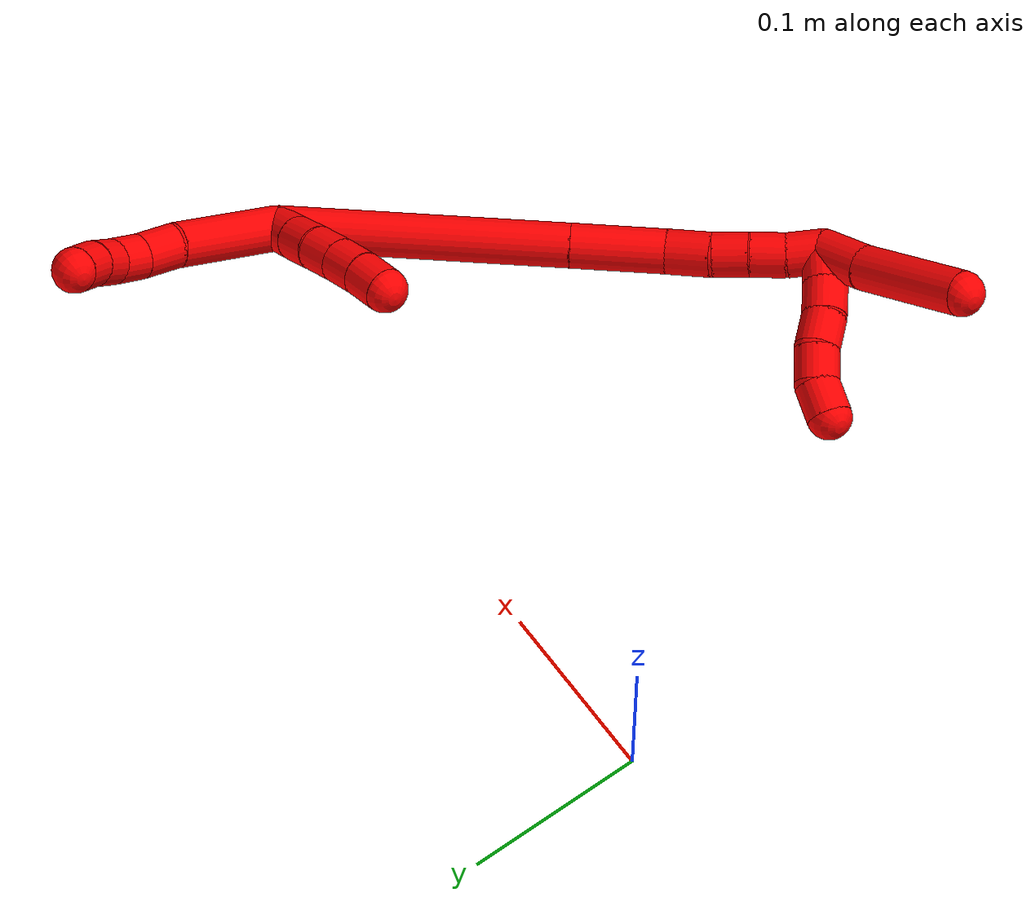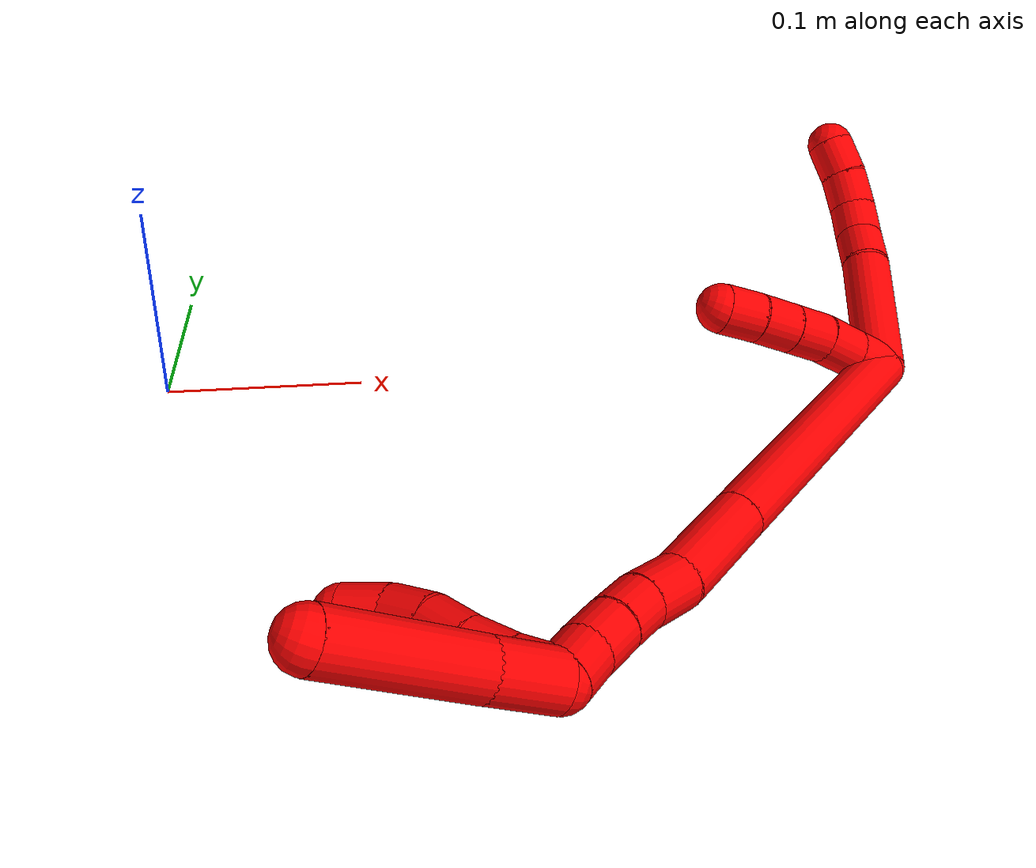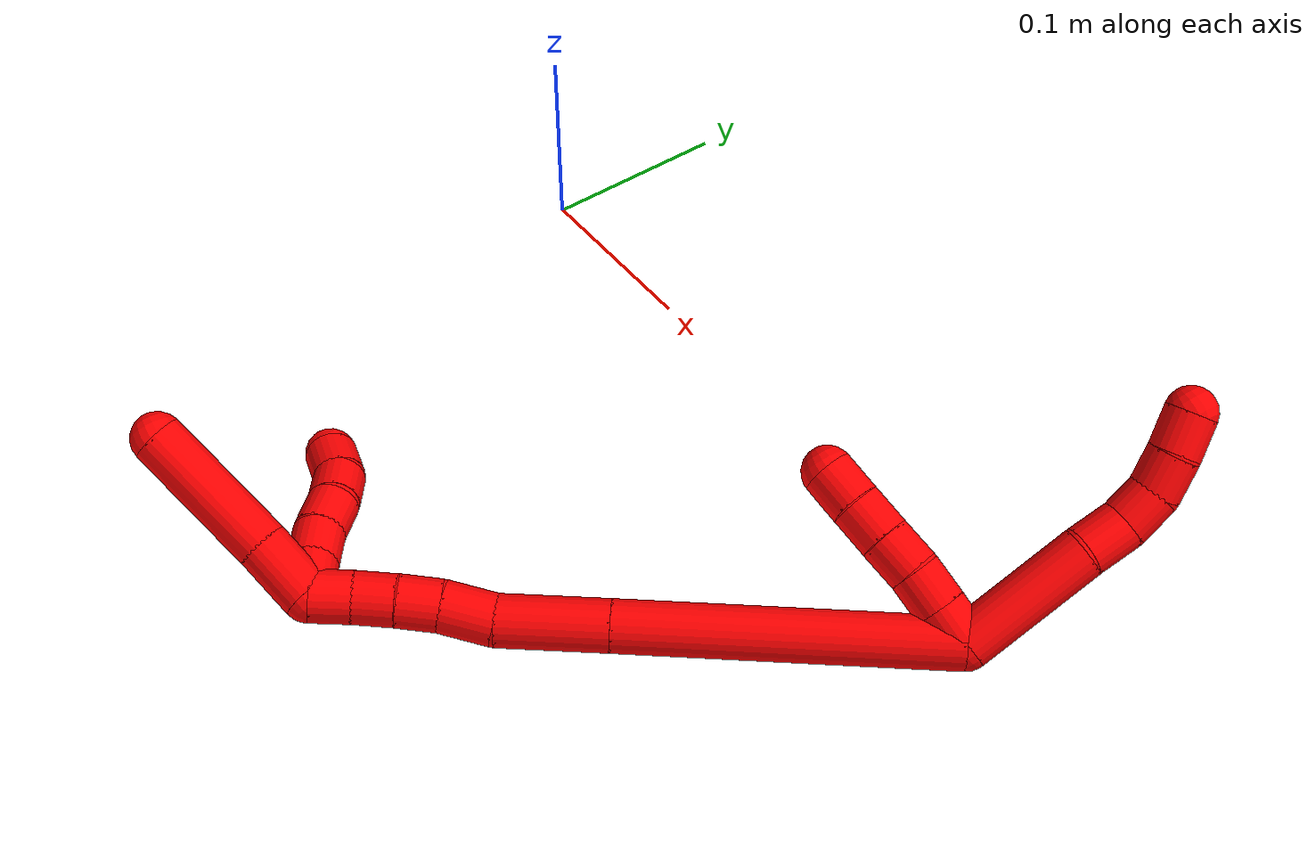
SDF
<sdf version="1.7">
 <world name="default">
  <model name="2">
   <static>0</static>
   <link name="2">
    <collision name="collision-cylinder-e_1_2_8">
     <pose>0.008759 0.032255 -0.004434 -1.70742 0.262809 -0.30087</pose>
     <geometry><cylinder><radius>0.0125</radius><length>0.067432</length></cylinder></geometry>
     <surface>
      <friction><ode><mu>1.16</mu><mu2>1.16</mu2><slip1>0</slip1><slip2>0</slip2></ode></friction>
      <contact><ode><kp>1e+06</kp><kd>1</kd><max_vel>0</max_vel><min_depth>0.001</min_depth></ode></contact>
     </surface>
    </collision>
    <visual name="visual-cylinder-e_1_2_8">
     <pose>0.008759 0.032255 -0.004434 -1.70742 0.262809 -0.30087</pose>
     <geometry><cylinder><radius>0.0125</radius><length>0.067432</length></cylinder></geometry>
     <material><ambient>1 0 0 1</ambient></material>
    </visual>
    <collision name="collision-cylinder-e_2_8_9">
     <pose>0.02217 0.074709 -0.00988 -1.66955 0.426056 -0.468822</pose>
     <geometry><cylinder><radius>0.0125</radius><length>0.022511</length></cylinder></geometry>
     <surface>
      <friction><ode><mu>1.16</mu><mu2>1.16</mu2><slip1>0</slip1><slip2>0</slip2></ode></friction>
      <contact><ode><kp>1e+06</kp><kd>1</kd><max_vel>0</max_vel><min_depth>0.001</min_depth></ode></contact>
     </surface>
    </collision>
    <visual name="visual-cylinder-e_2_8_9">
     <pose>0.02217 0.074709 -0.00988 -1.66955 0.426056 -0.468822</pose>
     <geometry><cylinder><radius>0.0125</radius><length>0.022511</length></cylinder></geometry>
     <material><ambient>1 0 0 1</ambient></material>
    </visual>
    <collision name="collision-cylinder-e_3_9_10">
     <pose>0.028751 0.094375 -0.013497 -1.83958 0.194036 -0.254136</pose>
     <geometry><cylinder><radius>0.0125</radius><length>0.020013</length></cylinder></geometry>
     <surface>
      <friction><ode><mu>1.16</mu><mu2>1.16</mu2><slip1>0</slip1><slip2>0</slip2></ode></friction>
      <contact><ode><kp>1e+06</kp><kd>1</kd><max_vel>0</max_vel><min_depth>0.001</min_depth></ode></contact>
     </surface>
    </collision>
    <visual name="visual-cylinder-e_3_9_10">
     <pose>0.028751 0.094375 -0.013497 -1.83958 0.194036 -0.254136</pose>
     <geometry><cylinder><radius>0.0125</radius><length>0.020013</length></cylinder></geometry>
     <material><ambient>1 0 0 1</ambient></material>
    </visual>
    <collision name="collision-cylinder-e_4_10_11">
     <pose>0.030256 0.112497 -0.021106 -2.09467 -0.042432 0.073496</pose>
     <geometry><cylinder><radius>0.0125</radius><length>0.020012</length></cylinder></geometry>
     <surface>
      <friction><ode><mu>1.16</mu><mu2>1.16</mu2><slip1>0</slip1><slip2>0</slip2></ode></friction>
      <contact><ode><kp>1e+06</kp><kd>1</kd><max_vel>0</max_vel><min_depth>0.001</min_depth></ode></contact>
     </surface>
    </collision>
    <visual name="visual-cylinder-e_4_10_11">
     <pose>0.030256 0.112497 -0.021106 -2.09467 -0.042432 0.073496</pose>
     <geometry><cylinder><radius>0.0125</radius><length>0.020012</length></cylinder></geometry>
     <material><ambient>1 0 0 1</ambient></material>
    </visual>
    <collision name="collision-cylinder-e_5_11_6">
     <pose>0.030221 0.129287 -0.031938 -2.19279 0.038818 -0.075566</pose>
     <geometry><cylinder><radius>0.0125</radius><length>0.020033</length></cylinder></geometry>
     <surface>
      <friction><ode><mu>1.16</mu><mu2>1.16</mu2><slip1>0</slip1><slip2>0</slip2></ode></friction>
      <contact><ode><kp>1e+06</kp><kd>1</kd><max_vel>0</max_vel><min_depth>0.001</min_depth></ode></contact>
     </surface>
    </collision>
    <visual name="visual-cylinder-e_5_11_6">
     <pose>0.030221 0.129287 -0.031938 -2.19279 0.038818 -0.075566</pose>
     <geometry><cylinder><radius>0.0125</radius><length>0.020033</length></cylinder></geometry>
     <material><ambient>1 0 0 1</ambient></material>
    </visual>
    <collision name="collision-cylinder-e_1_2_12">
     <pose>-0.001685 -0.000304 -0.009852 3.11076 -0.16927 -2.78203</pose>
     <geometry><cylinder><radius>0.0125</radius><length>0.02</length></cylinder></geometry>
     <surface>
      <friction><ode><mu>1.16</mu><mu2>1.16</mu2><slip1>0</slip1><slip2>0</slip2></ode></friction>
      <contact><ode><kp>1e+06</kp><kd>1</kd><max_vel>0</max_vel><min_depth>0.001</min_depth></ode></contact>
     </surface>
    </collision>
    <visual name="visual-cylinder-e_1_2_12">
     <pose>-0.001685 -0.000304 -0.009852 3.11076 -0.16927 -2.78203</pose>
     <geometry><cylinder><radius>0.0125</radius><length>0.02</length></cylinder></geometry>
     <material><ambient>1 0 0 1</ambient></material>
    </visual>
    <collision name="collision-cylinder-e_2_12_13">
     <pose>-0.005216 -0.001068 -0.029522 3.09475 -0.185728 -2.64876</pose>
     <geometry><cylinder><radius>0.0125</radius><length>0.02</length></cylinder></geometry>
     <surface>
      <friction><ode><mu>1.16</mu><mu2>1.16</mu2><slip1>0</slip1><slip2>0</slip2></ode></friction>
      <contact><ode><kp>1e+06</kp><kd>1</kd><max_vel>0</max_vel><min_depth>0.001</min_depth></ode></contact>
     </surface>
    </collision>
    <visual name="visual-cylinder-e_2_12_13">
     <pose>-0.005216 -0.001068 -0.029522 3.09475 -0.185728 -2.64876</pose>
     <geometry><cylinder><radius>0.0125</radius><length>0.02</length></cylinder></geometry>
     <material><ambient>1 0 0 1</ambient></material>
    </visual>
    <collision name="collision-cylinder-e_3_13_14">
     <pose>-0.008386 -0.003146 -0.049119 2.97768 -0.132692 -1.3603</pose>
     <geometry><cylinder><radius>0.0125</radius><length>0.02</length></cylinder></geometry>
     <surface>
      <friction><ode><mu>1.16</mu><mu2>1.16</mu2><slip1>0</slip1><slip2>0</slip2></ode></friction>
      <contact><ode><kp>1e+06</kp><kd>1</kd><max_vel>0</max_vel><min_depth>0.001</min_depth></ode></contact>
     </surface>
    </collision>
    <visual name="visual-cylinder-e_3_13_14">
     <pose>-0.008386 -0.003146 -0.049119 2.97768 -0.132692 -1.3603</pose>
     <geometry><cylinder><radius>0.0125</radius><length>0.02</length></cylinder></geometry>
     <material><ambient>1 0 0 1</ambient></material>
    </visual>
    <collision name="collision-cylinder-e_4_14_15">
     <pose>-0.010722 -0.006286 -0.068729 2.9879 -0.101533 -1.16658</pose>
     <geometry><cylinder><radius>0.0125</radius><length>0.02</length></cylinder></geometry>
     <surface>
      <friction><ode><mu>1.16</mu><mu2>1.16</mu2><slip1>0</slip1><slip2>0</slip2></ode></friction>
      <contact><ode><kp>1e+06</kp><kd>1</kd><max_vel>0</max_vel><min_depth>0.001</min_depth></ode></contact>
     </surface>
    </collision>
    <visual name="visual-cylinder-e_4_14_15">
     <pose>-0.010722 -0.006286 -0.068729 2.9879 -0.101533 -1.16658</pose>
     <geometry><cylinder><radius>0.0125</radius><length>0.02</length></cylinder></geometry>
     <material><ambient>1 0 0 1</ambient></material>
    </visual>
    <collision name="collision-cylinder-e_5_15_5">
     <pose>-0.012002 -0.009424 -0.088425 2.97934 -0.026672 -0.325164</pose>
     <geometry><cylinder><radius>0.0125</radius><length>0.02</length></cylinder></geometry>
     <surface>
      <friction><ode><mu>1.16</mu><mu2>1.16</mu2><slip1>0</slip1><slip2>0</slip2></ode></friction>
      <contact><ode><kp>1e+06</kp><kd>1</kd><max_vel>0</max_vel><min_depth>0.001</min_depth></ode></contact>
     </surface>
    </collision>
    <visual name="visual-cylinder-e_5_15_5">
     <pose>-0.012002 -0.009424 -0.088425 2.97934 -0.026672 -0.325164</pose>
     <geometry><cylinder><radius>0.0125</radius><length>0.02</length></cylinder></geometry>
     <material><ambient>1 0 0 1</ambient></material>
    </visual>
    <collision name="collision-cylinder-e_1_2_16">
     <pose>-0.026321 -0.062479 -0.043129 2.17498 -0.333723 -0.621081</pose>
     <geometry><cylinder><radius>0.0125</radius><length>0.160706</length></cylinder></geometry>
     <surface>
      <friction><ode><mu>1.16</mu><mu2>1.16</mu2><slip1>0</slip1><slip2>0</slip2></ode></friction>
      <contact><ode><kp>1e+06</kp><kd>1</kd><max_vel>0</max_vel><min_depth>0.001</min_depth></ode></contact>
     </surface>
    </collision>
    <visual name="visual-cylinder-e_1_2_16">
     <pose>-0.026321 -0.062479 -0.043129 2.17498 -0.333723 -0.621081</pose>
     <geometry><cylinder><radius>0.0125</radius><length>0.160706</length></cylinder></geometry>
     <material><ambient>1 0 0 1</ambient></material>
    </visual>
    <collision name="collision-cylinder-e_2_16_17">
     <pose>-0.06127 -0.14569 -0.100437 2.17063 -0.330919 -0.613056</pose>
     <geometry><cylinder><radius>0.0125</radius><length>0.053114</length></cylinder></geometry>
     <surface>
      <friction><ode><mu>1.16</mu><mu2>1.16</mu2><slip1>0</slip1><slip2>0</slip2></ode></friction>
      <contact><ode><kp>1e+06</kp><kd>1</kd><max_vel>0</max_vel><min_depth>0.001</min_depth></ode></contact>
     </surface>
    </collision>
    <visual name="visual-cylinder-e_2_16_17">
     <pose>-0.06127 -0.14569 -0.100437 2.17063 -0.330919 -0.613056</pose>
     <geometry><cylinder><radius>0.0125</radius><length>0.053114</length></cylinder></geometry>
     <material><ambient>1 0 0 1</ambient></material>
    </visual>
    <collision name="collision-cylinder-e_3_17_18">
     <pose>-0.074557 -0.174487 -0.123439 2.40111 -0.371617 -0.902016</pose>
     <geometry><cylinder><radius>0.0125</radius><length>0.025659</length></cylinder></geometry>
     <surface>
      <friction><ode><mu>1.16</mu><mu2>1.16</mu2><slip1>0</slip1><slip2>0</slip2></ode></friction>
      <contact><ode><kp>1e+06</kp><kd>1</kd><max_vel>0</max_vel><min_depth>0.001</min_depth></ode></contact>
     </surface>
    </collision>
    <visual name="visual-cylinder-e_3_17_18">
     <pose>-0.074557 -0.174487 -0.123439 2.40111 -0.371617 -0.902016</pose>
     <geometry><cylinder><radius>0.0125</radius><length>0.025659</length></cylinder></geometry>
     <material><ambient>1 0 0 1</ambient></material>
    </visual>
    <collision name="collision-cylinder-e_4_18_19">
     <pose>-0.083436 -0.189669 -0.138107 2.25829 -0.429642 -0.864722</pose>
     <geometry><cylinder><radius>0.0125</radius><length>0.020263</length></cylinder></geometry>
     <surface>
      <friction><ode><mu>1.16</mu><mu2>1.16</mu2><slip1>0</slip1><slip2>0</slip2></ode></friction>
      <contact><ode><kp>1e+06</kp><kd>1</kd><max_vel>0</max_vel><min_depth>0.001</min_depth></ode></contact>
     </surface>
    </collision>
    <visual name="visual-cylinder-e_4_18_19">
     <pose>-0.083436 -0.189669 -0.138107 2.25829 -0.429642 -0.864722</pose>
     <geometry><cylinder><radius>0.0125</radius><length>0.020263</length></cylinder></geometry>
     <material><ambient>1 0 0 1</ambient></material>
    </visual>
    <collision name="collision-cylinder-e_5_19_20">
     <pose>-0.091343 -0.204285 -0.149508 2.2085 -0.376219 -0.722759</pose>
     <geometry><cylinder><radius>0.0125</radius><length>0.020066</length></cylinder></geometry>
     <surface>
      <friction><ode><mu>1.16</mu><mu2>1.16</mu2><slip1>0</slip1><slip2>0</slip2></ode></friction>
      <contact><ode><kp>1e+06</kp><kd>1</kd><max_vel>0</max_vel><min_depth>0.001</min_depth></ode></contact>
     </surface>
    </collision>
    <visual name="visual-cylinder-e_5_19_20">
     <pose>-0.091343 -0.204285 -0.149508 2.2085 -0.376219 -0.722759</pose>
     <geometry><cylinder><radius>0.0125</radius><length>0.020066</length></cylinder></geometry>
     <material><ambient>1 0 0 1</ambient></material>
    </visual>
    <collision name="collision-cylinder-e_6_20_1">
     <pose>-0.099959 -0.219033 -0.160068 2.17502 -0.510207 -0.922376</pose>
     <geometry><cylinder><radius>0.0125</radius><length>0.020193</length></cylinder></geometry>
     <surface>
      <friction><ode><mu>1.16</mu><mu2>1.16</mu2><slip1>0</slip1><slip2>0</slip2></ode></friction>
      <contact><ode><kp>1e+06</kp><kd>1</kd><max_vel>0</max_vel><min_depth>0.001</min_depth></ode></contact>
     </surface>
    </collision>
    <visual name="visual-cylinder-e_6_20_1">
     <pose>-0.099959 -0.219033 -0.160068 2.17502 -0.510207 -0.922376</pose>
     <geometry><cylinder><radius>0.0125</radius><length>0.020193</length></cylinder></geometry>
     <material><ambient>1 0 0 1</ambient></material>
    </visual>
    <collision name="collision-cylinder-e_1_1_21">
     <pose>-0.107721 -0.229102 -0.180083 2.95596 -0.183305 -1.55809</pose>
     <geometry><cylinder><radius>0.0125</radius><length>0.031064</length></cylinder></geometry>
     <surface>
      <friction><ode><mu>1.16</mu><mu2>1.16</mu2><slip1>0</slip1><slip2>0</slip2></ode></friction>
      <contact><ode><kp>1e+06</kp><kd>1</kd><max_vel>0</max_vel><min_depth>0.001</min_depth></ode></contact>
     </surface>
    </collision>
    <visual name="visual-cylinder-e_1_1_21">
     <pose>-0.107721 -0.229102 -0.180083 2.95596 -0.183305 -1.55809</pose>
     <geometry><cylinder><radius>0.0125</radius><length>0.031064</length></cylinder></geometry>
     <material><ambient>1 0 0 1</ambient></material>
    </visual>
    <collision name="collision-cylinder-e_2_21_4">
     <pose>-0.119955 -0.23805 -0.227682 2.95568 -0.276288 -1.96021</pose>
     <geometry><cylinder><radius>0.0125</radius><length>0.068936</length></cylinder></geometry>
     <surface>
      <friction><ode><mu>1.16</mu><mu2>1.16</mu2><slip1>0</slip1><slip2>0</slip2></ode></friction>
      <contact><ode><kp>1e+06</kp><kd>1</kd><max_vel>0</max_vel><min_depth>0.001</min_depth></ode></contact>
     </surface>
    </collision>
    <visual name="visual-cylinder-e_2_21_4">
     <pose>-0.119955 -0.23805 -0.227682 2.95568 -0.276288 -1.96021</pose>
     <geometry><cylinder><radius>0.0125</radius><length>0.068936</length></cylinder></geometry>
     <material><ambient>1 0 0 1</ambient></material>
    </visual>
    <collision name="collision-cylinder-e_1_1_22">
     <pose>-0.098189 -0.22534 -0.172437 -3.01411 0.734329 -2.81267</pose>
     <geometry><cylinder><radius>0.0125</radius><length>0.02</length></cylinder></geometry>
     <surface>
      <friction><ode><mu>1.16</mu><mu2>1.16</mu2><slip1>0</slip1><slip2>0</slip2></ode></friction>
      <contact><ode><kp>1e+06</kp><kd>1</kd><max_vel>0</max_vel><min_depth>0.001</min_depth></ode></contact>
     </surface>
    </collision>
    <visual name="visual-cylinder-e_1_1_22">
     <pose>-0.098189 -0.22534 -0.172437 -3.01411 0.734329 -2.81267</pose>
     <geometry><cylinder><radius>0.0125</radius><length>0.02</length></cylinder></geometry>
     <material><ambient>1 0 0 1</ambient></material>
    </visual>
    <collision name="collision-cylinder-e_2_22_23">
     <pose>-0.084946 -0.222258 -0.187054 -2.85503 0.713171 -2.4026</pose>
     <geometry><cylinder><radius>0.0125</radius><length>0.02</length></cylinder></geometry>
     <surface>
      <friction><ode><mu>1.16</mu><mu2>1.16</mu2><slip1>0</slip1><slip2>0</slip2></ode></friction>
      <contact><ode><kp>1e+06</kp><kd>1</kd><max_vel>0</max_vel><min_depth>0.001</min_depth></ode></contact>
     </surface>
    </collision>
    <visual name="visual-cylinder-e_2_22_23">
     <pose>-0.084946 -0.222258 -0.187054 -2.85503 0.713171 -2.4026</pose>
     <geometry><cylinder><radius>0.0125</radius><length>0.02</length></cylinder></geometry>
     <material><ambient>1 0 0 1</ambient></material>
    </visual>
    <collision name="collision-cylinder-e_3_23_24">
     <pose>-0.071128 -0.216982 -0.200409 -2.66645 0.814669 -2.11877</pose>
     <geometry><cylinder><radius>0.0125</radius><length>0.02</length></cylinder></geometry>
     <surface>
      <friction><ode><mu>1.16</mu><mu2>1.16</mu2><slip1>0</slip1><slip2>0</slip2></ode></friction>
      <contact><ode><kp>1e+06</kp><kd>1</kd><max_vel>0</max_vel><min_depth>0.001</min_depth></ode></contact>
     </surface>
    </collision>
    <visual name="visual-cylinder-e_3_23_24">
     <pose>-0.071128 -0.216982 -0.200409 -2.66645 0.814669 -2.11877</pose>
     <geometry><cylinder><radius>0.0125</radius><length>0.02</length></cylinder></geometry>
     <material><ambient>1 0 0 1</ambient></material>
    </visual>
    <collision name="collision-cylinder-e_4_24_25">
     <pose>-0.056375 -0.213065 -0.213103 -3.0241 0.844864 -2.88139</pose>
     <geometry><cylinder><radius>0.0125</radius><length>0.02</length></cylinder></geometry>
     <surface>
      <friction><ode><mu>1.16</mu><mu2>1.16</mu2><slip1>0</slip1><slip2>0</slip2></ode></friction>
      <contact><ode><kp>1e+06</kp><kd>1</kd><max_vel>0</max_vel><min_depth>0.001</min_depth></ode></contact>
     </surface>
    </collision>
    <visual name="visual-cylinder-e_4_24_25">
     <pose>-0.056375 -0.213065 -0.213103 -3.0241 0.844864 -2.88139</pose>
     <geometry><cylinder><radius>0.0125</radius><length>0.02</length></cylinder></geometry>
     <material><ambient>1 0 0 1</ambient></material>
    </visual>
    <collision name="collision-cylinder-e_5_25_3">
     <pose>-0.04322 -0.21404 -0.227739 2.92701 0.603629 2.47546</pose>
     <geometry><cylinder><radius>0.0125</radius><length>0.02</length></cylinder></geometry>
     <surface>
      <friction><ode><mu>1.16</mu><mu2>1.16</mu2><slip1>0</slip1><slip2>0</slip2></ode></friction>
      <contact><ode><kp>1e+06</kp><kd>1</kd><max_vel>0</max_vel><min_depth>0.001</min_depth></ode></contact>
     </surface>
    </collision>
    <visual name="visual-cylinder-e_5_25_3">
     <pose>-0.04322 -0.21404 -0.227739 2.92701 0.603629 2.47546</pose>
     <geometry><cylinder><radius>0.0125</radius><length>0.02</length></cylinder></geometry>
     <material><ambient>1 0 0 1</ambient></material>
    </visual>
    <collision name="collision-sphere-3">
     <pose>-0.037543 -0.215793 -0.235783 0 -0 0</pose>
     <geometry><sphere><radius>0.0125</radius></sphere></geometry>
     <surface>
      <friction><ode><mu>1.16</mu><mu2>1.16</mu2><slip1>0</slip1><slip2>0</slip2></ode></friction>
      <contact><ode><kp>1e+06</kp><kd>1</kd><max_vel>0</max_vel><min_depth>0.001</min_depth></ode></contact>
     </surface>
    </collision>
    <visual name="visual-sphere-3">
     <pose>-0.037543 -0.215793 -0.235783 0 -0 0</pose>
     <geometry><sphere><radius>0.0125</radius></sphere></geometry>
     <material><ambient>1 0 0 1</ambient></material>
    </visual>
    <collision name="collision-sphere-25">
     <pose>-0.048896 -0.212287 -0.219695 0 -0 0</pose>
     <geometry><sphere><radius>0.0125</radius></sphere></geometry>
     <surface>
      <friction><ode><mu>1.16</mu><mu2>1.16</mu2><slip1>0</slip1><slip2>0</slip2></ode></friction>
      <contact><ode><kp>1e+06</kp><kd>1</kd><max_vel>0</max_vel><min_depth>0.001</min_depth></ode></contact>
     </surface>
    </collision>
    <visual name="visual-sphere-25">
     <pose>-0.048896 -0.212287 -0.219695 0 -0 0</pose>
     <geometry><sphere><radius>0.0125</radius></sphere></geometry>
     <material><ambient>1 0 0 1</ambient></material>
    </visual>
    <collision name="collision-sphere-24">
     <pose>-0.063853 -0.213843 -0.20651 0 -0 0</pose>
     <geometry><sphere><radius>0.0125</radius></sphere></geometry>
     <surface>
      <friction><ode><mu>1.16</mu><mu2>1.16</mu2><slip1>0</slip1><slip2>0</slip2></ode></friction>
      <contact><ode><kp>1e+06</kp><kd>1</kd><max_vel>0</max_vel><min_depth>0.001</min_depth></ode></contact>
     </surface>
    </collision>
    <visual name="visual-sphere-24">
     <pose>-0.063853 -0.213843 -0.20651 0 -0 0</pose>
     <geometry><sphere><radius>0.0125</radius></sphere></geometry>
     <material><ambient>1 0 0 1</ambient></material>
    </visual>
    <collision name="collision-sphere-23">
     <pose>-0.078403 -0.22012 -0.194308 0 -0 0</pose>
     <geometry><sphere><radius>0.0125</radius></sphere></geometry>
     <surface>
      <friction><ode><mu>1.16</mu><mu2>1.16</mu2><slip1>0</slip1><slip2>0</slip2></ode></friction>
      <contact><ode><kp>1e+06</kp><kd>1</kd><max_vel>0</max_vel><min_depth>0.001</min_depth></ode></contact>
     </surface>
    </collision>
    <visual name="visual-sphere-23">
     <pose>-0.078403 -0.22012 -0.194308 0 -0 0</pose>
     <geometry><sphere><radius>0.0125</radius></sphere></geometry>
     <material><ambient>1 0 0 1</ambient></material>
    </visual>
    <collision name="collision-sphere-22">
     <pose>-0.091488 -0.224396 -0.179799 0 -0 0</pose>
     <geometry><sphere><radius>0.0125</radius></sphere></geometry>
     <surface>
      <friction><ode><mu>1.16</mu><mu2>1.16</mu2><slip1>0</slip1><slip2>0</slip2></ode></friction>
      <contact><ode><kp>1e+06</kp><kd>1</kd><max_vel>0</max_vel><min_depth>0.001</min_depth></ode></contact>
     </surface>
    </collision>
    <visual name="visual-sphere-22">
     <pose>-0.091488 -0.224396 -0.179799 0 -0 0</pose>
     <geometry><sphere><radius>0.0125</radius></sphere></geometry>
     <material><ambient>1 0 0 1</ambient></material>
    </visual>
    <collision name="collision-sphere-4">
     <pose>-0.129357 -0.24418 -0.260271 0 -0 0</pose>
     <geometry><sphere><radius>0.0125</radius></sphere></geometry>
     <surface>
      <friction><ode><mu>1.16</mu><mu2>1.16</mu2><slip1>0</slip1><slip2>0</slip2></ode></friction>
      <contact><ode><kp>1e+06</kp><kd>1</kd><max_vel>0</max_vel><min_depth>0.001</min_depth></ode></contact>
     </surface>
    </collision>
    <visual name="visual-sphere-4">
     <pose>-0.129357 -0.24418 -0.260271 0 -0 0</pose>
     <geometry><sphere><radius>0.0125</radius></sphere></geometry>
     <material><ambient>1 0 0 1</ambient></material>
    </visual>
    <collision name="collision-sphere-21">
     <pose>-0.110552 -0.231921 -0.195093 0 -0 0</pose>
     <geometry><sphere><radius>0.0125</radius></sphere></geometry>
     <surface>
      <friction><ode><mu>1.16</mu><mu2>1.16</mu2><slip1>0</slip1><slip2>0</slip2></ode></friction>
      <contact><ode><kp>1e+06</kp><kd>1</kd><max_vel>0</max_vel><min_depth>0.001</min_depth></ode></contact>
     </surface>
    </collision>
    <visual name="visual-sphere-21">
     <pose>-0.110552 -0.231921 -0.195093 0 -0 0</pose>
     <geometry><sphere><radius>0.0125</radius></sphere></geometry>
     <material><ambient>1 0 0 1</ambient></material>
    </visual>
    <collision name="collision-sphere-1">
     <pose>-0.10489 -0.226283 -0.165074 0 -0 0</pose>
     <geometry><sphere><radius>0.0125</radius></sphere></geometry>
     <surface>
      <friction><ode><mu>1.16</mu><mu2>1.16</mu2><slip1>0</slip1><slip2>0</slip2></ode></friction>
      <contact><ode><kp>1e+06</kp><kd>1</kd><max_vel>0</max_vel><min_depth>0.001</min_depth></ode></contact>
     </surface>
    </collision>
    <visual name="visual-sphere-1">
     <pose>-0.10489 -0.226283 -0.165074 0 -0 0</pose>
     <geometry><sphere><radius>0.0125</radius></sphere></geometry>
     <material><ambient>1 0 0 1</ambient></material>
    </visual>
    <collision name="collision-sphere-6">
     <pose>0.030609 0.137421 -0.03777 0 -0 0</pose>
     <geometry><sphere><radius>0.0125</radius></sphere></geometry>
     <surface>
      <friction><ode><mu>1.16</mu><mu2>1.16</mu2><slip1>0</slip1><slip2>0</slip2></ode></friction>
      <contact><ode><kp>1e+06</kp><kd>1</kd><max_vel>0</max_vel><min_depth>0.001</min_depth></ode></contact>
     </surface>
    </collision>
    <visual name="visual-sphere-6">
     <pose>0.030609 0.137421 -0.03777 0 -0 0</pose>
     <geometry><sphere><radius>0.0125</radius></sphere></geometry>
     <material><ambient>1 0 0 1</ambient></material>
    </visual>
    <collision name="collision-sphere-11">
     <pose>0.029832 0.121153 -0.026107 0 -0 0</pose>
     <geometry><sphere><radius>0.0125</radius></sphere></geometry>
     <surface>
      <friction><ode><mu>1.16</mu><mu2>1.16</mu2><slip1>0</slip1><slip2>0</slip2></ode></friction>
      <contact><ode><kp>1e+06</kp><kd>1</kd><max_vel>0</max_vel><min_depth>0.001</min_depth></ode></contact>
     </surface>
    </collision>
    <visual name="visual-sphere-11">
     <pose>0.029832 0.121153 -0.026107 0 -0 0</pose>
     <geometry><sphere><radius>0.0125</radius></sphere></geometry>
     <material><ambient>1 0 0 1</ambient></material>
    </visual>
    <collision name="collision-sphere-10">
     <pose>0.030681 0.103841 -0.016105 0 -0 0</pose>
     <geometry><sphere><radius>0.0125</radius></sphere></geometry>
     <surface>
      <friction><ode><mu>1.16</mu><mu2>1.16</mu2><slip1>0</slip1><slip2>0</slip2></ode></friction>
      <contact><ode><kp>1e+06</kp><kd>1</kd><max_vel>0</max_vel><min_depth>0.001</min_depth></ode></contact>
     </surface>
    </collision>
    <visual name="visual-sphere-10">
     <pose>0.030681 0.103841 -0.016105 0 -0 0</pose>
     <geometry><sphere><radius>0.0125</radius></sphere></geometry>
     <material><ambient>1 0 0 1</ambient></material>
    </visual>
    <collision name="collision-sphere-9">
     <pose>0.026822 0.084909 -0.01089 0 -0 0</pose>
     <geometry><sphere><radius>0.0125</radius></sphere></geometry>
     <surface>
      <friction><ode><mu>1.16</mu><mu2>1.16</mu2><slip1>0</slip1><slip2>0</slip2></ode></friction>
      <contact><ode><kp>1e+06</kp><kd>1</kd><max_vel>0</max_vel><min_depth>0.001</min_depth></ode></contact>
     </surface>
    </collision>
    <visual name="visual-sphere-9">
     <pose>0.026822 0.084909 -0.01089 0 -0 0</pose>
     <geometry><sphere><radius>0.0125</radius></sphere></geometry>
     <material><ambient>1 0 0 1</ambient></material>
    </visual>
    <collision name="collision-sphere-2">
     <geometry><sphere><radius>0.0125</radius></sphere></geometry>
     <surface>
      <friction><ode><mu>1.16</mu><mu2>1.16</mu2><slip1>0</slip1><slip2>0</slip2></ode></friction>
      <contact><ode><kp>1e+06</kp><kd>1</kd><max_vel>0</max_vel><min_depth>0.001</min_depth></ode></contact>
     </surface>
    </collision>
    <visual name="visual-sphere-2">
     <geometry><sphere><radius>0.0125</radius></sphere></geometry>
     <material><ambient>1 0 0 1</ambient></material>
    </visual>
    <collision name="collision-sphere-19">
     <pose>-0.087656 -0.196788 -0.143952 0 -0 0</pose>
     <geometry><sphere><radius>0.0125</radius></sphere></geometry>
     <surface>
      <friction><ode><mu>1.16</mu><mu2>1.16</mu2><slip1>0</slip1><slip2>0</slip2></ode></friction>
      <contact><ode><kp>1e+06</kp><kd>1</kd><max_vel>0</max_vel><min_depth>0.001</min_depth></ode></contact>
     </surface>
    </collision>
    <visual name="visual-sphere-19">
     <pose>-0.087656 -0.196788 -0.143952 0 -0 0</pose>
     <geometry><sphere><radius>0.0125</radius></sphere></geometry>
     <material><ambient>1 0 0 1</ambient></material>
    </visual>
    <collision name="collision-sphere-8">
     <pose>0.017518 0.06451 -0.008869 0 -0 0</pose>
     <geometry><sphere><radius>0.0125</radius></sphere></geometry>
     <surface>
      <friction><ode><mu>1.16</mu><mu2>1.16</mu2><slip1>0</slip1><slip2>0</slip2></ode></friction>
      <contact><ode><kp>1e+06</kp><kd>1</kd><max_vel>0</max_vel><min_depth>0.001</min_depth></ode></contact>
     </surface>
    </collision>
    <visual name="visual-sphere-8">
     <pose>0.017518 0.06451 -0.008869 0 -0 0</pose>
     <geometry><sphere><radius>0.0125</radius></sphere></geometry>
     <material><ambient>1 0 0 1</ambient></material>
    </visual>
    <collision name="collision-sphere-12">
     <pose>-0.003369 -0.000608 -0.019705 0 -0 0</pose>
     <geometry><sphere><radius>0.0125</radius></sphere></geometry>
     <surface>
      <friction><ode><mu>1.16</mu><mu2>1.16</mu2><slip1>0</slip1><slip2>0</slip2></ode></friction>
      <contact><ode><kp>1e+06</kp><kd>1</kd><max_vel>0</max_vel><min_depth>0.001</min_depth></ode></contact>
     </surface>
    </collision>
    <visual name="visual-sphere-12">
     <pose>-0.003369 -0.000608 -0.019705 0 -0 0</pose>
     <geometry><sphere><radius>0.0125</radius></sphere></geometry>
     <material><ambient>1 0 0 1</ambient></material>
    </visual>
    <collision name="collision-sphere-13">
     <pose>-0.007062 -0.001528 -0.039339 0 -0 0</pose>
     <geometry><sphere><radius>0.0125</radius></sphere></geometry>
     <surface>
      <friction><ode><mu>1.16</mu><mu2>1.16</mu2><slip1>0</slip1><slip2>0</slip2></ode></friction>
      <contact><ode><kp>1e+06</kp><kd>1</kd><max_vel>0</max_vel><min_depth>0.001</min_depth></ode></contact>
     </surface>
    </collision>
    <visual name="visual-sphere-13">
     <pose>-0.007062 -0.001528 -0.039339 0 -0 0</pose>
     <geometry><sphere><radius>0.0125</radius></sphere></geometry>
     <material><ambient>1 0 0 1</ambient></material>
    </visual>
    <collision name="collision-sphere-14">
     <pose>-0.009709 -0.004763 -0.058898 0 -0 0</pose>
     <geometry><sphere><radius>0.0125</radius></sphere></geometry>
     <surface>
      <friction><ode><mu>1.16</mu><mu2>1.16</mu2><slip1>0</slip1><slip2>0</slip2></ode></friction>
      <contact><ode><kp>1e+06</kp><kd>1</kd><max_vel>0</max_vel><min_depth>0.001</min_depth></ode></contact>
     </surface>
    </collision>
    <visual name="visual-sphere-14">
     <pose>-0.009709 -0.004763 -0.058898 0 -0 0</pose>
     <geometry><sphere><radius>0.0125</radius></sphere></geometry>
     <material><ambient>1 0 0 1</ambient></material>
    </visual>
    <collision name="collision-sphere-15">
     <pose>-0.011736 -0.007809 -0.07856 0 -0 0</pose>
     <geometry><sphere><radius>0.0125</radius></sphere></geometry>
     <surface>
      <friction><ode><mu>1.16</mu><mu2>1.16</mu2><slip1>0</slip1><slip2>0</slip2></ode></friction>
      <contact><ode><kp>1e+06</kp><kd>1</kd><max_vel>0</max_vel><min_depth>0.001</min_depth></ode></contact>
     </surface>
    </collision>
    <visual name="visual-sphere-15">
     <pose>-0.011736 -0.007809 -0.07856 0 -0 0</pose>
     <geometry><sphere><radius>0.0125</radius></sphere></geometry>
     <material><ambient>1 0 0 1</ambient></material>
    </visual>
    <collision name="collision-sphere-5">
     <pose>-0.012269 -0.011039 -0.09829 0 -0 0</pose>
     <geometry><sphere><radius>0.0125</radius></sphere></geometry>
     <surface>
      <friction><ode><mu>1.16</mu><mu2>1.16</mu2><slip1>0</slip1><slip2>0</slip2></ode></friction>
      <contact><ode><kp>1e+06</kp><kd>1</kd><max_vel>0</max_vel><min_depth>0.001</min_depth></ode></contact>
     </surface>
    </collision>
    <visual name="visual-sphere-5">
     <pose>-0.012269 -0.011039 -0.09829 0 -0 0</pose>
     <geometry><sphere><radius>0.0125</radius></sphere></geometry>
     <material><ambient>1 0 0 1</ambient></material>
    </visual>
    <collision name="collision-sphere-16">
     <pose>-0.052641 -0.124959 -0.086259 0 -0 0</pose>
     <geometry><sphere><radius>0.0125</radius></sphere></geometry>
     <surface>
      <friction><ode><mu>1.16</mu><mu2>1.16</mu2><slip1>0</slip1><slip2>0</slip2></ode></friction>
      <contact><ode><kp>1e+06</kp><kd>1</kd><max_vel>0</max_vel><min_depth>0.001</min_depth></ode></contact>
     </surface>
    </collision>
    <visual name="visual-sphere-16">
     <pose>-0.052641 -0.124959 -0.086259 0 -0 0</pose>
     <geometry><sphere><radius>0.0125</radius></sphere></geometry>
     <material><ambient>1 0 0 1</ambient></material>
    </visual>
    <collision name="collision-sphere-17">
     <pose>-0.069899 -0.166422 -0.114615 0 -0 0</pose>
     <geometry><sphere><radius>0.0125</radius></sphere></geometry>
     <surface>
      <friction><ode><mu>1.16</mu><mu2>1.16</mu2><slip1>0</slip1><slip2>0</slip2></ode></friction>
      <contact><ode><kp>1e+06</kp><kd>1</kd><max_vel>0</max_vel><min_depth>0.001</min_depth></ode></contact>
     </surface>
    </collision>
    <visual name="visual-sphere-17">
     <pose>-0.069899 -0.166422 -0.114615 0 -0 0</pose>
     <geometry><sphere><radius>0.0125</radius></sphere></geometry>
     <material><ambient>1 0 0 1</ambient></material>
    </visual>
    <collision name="collision-sphere-18">
     <pose>-0.079216 -0.182551 -0.132262 0 -0 0</pose>
     <geometry><sphere><radius>0.0125</radius></sphere></geometry>
     <surface>
      <friction><ode><mu>1.16</mu><mu2>1.16</mu2><slip1>0</slip1><slip2>0</slip2></ode></friction>
      <contact><ode><kp>1e+06</kp><kd>1</kd><max_vel>0</max_vel><min_depth>0.001</min_depth></ode></contact>
     </surface>
    </collision>
    <visual name="visual-sphere-18">
     <pose>-0.079216 -0.182551 -0.132262 0 -0 0</pose>
     <geometry><sphere><radius>0.0125</radius></sphere></geometry>
     <material><ambient>1 0 0 1</ambient></material>
    </visual>
    <collision name="collision-sphere-20">
     <pose>-0.095029 -0.211782 -0.155063 0 -0 0</pose>
     <geometry><sphere><radius>0.0125</radius></sphere></geometry>
     <surface>
      <friction><ode><mu>1.16</mu><mu2>1.16</mu2><slip1>0</slip1><slip2>0</slip2></ode></friction>
      <contact><ode><kp>1e+06</kp><kd>1</kd><max_vel>0</max_vel><min_depth>0.001</min_depth></ode></contact>
     </surface>
    </collision>
    <visual name="visual-sphere-20">
     <pose>-0.095029 -0.211782 -0.155063 0 -0 0</pose>
     <geometry><sphere><radius>0.0125</radius></sphere></geometry>
     <material><ambient>1 0 0 1</ambient></material>
    </visual>
    <inertial>
     <pose>-0.042021 -0.093067 -0.096713 0 -0 0</pose>
     <mass>0.75</mass>
     <inertia>
      <ixx>4.7e-05</ixx>
      <ixy>0</ixy>
      <ixz>0</ixz>
      <iyy>-0.000357</iyy>
      <iyz>0</iyz>
      <izz>0.000346</izz>
     </inertia>
    </inertial>
   </link>
   <pose>0.368578 -0.031233 0.012578 2.20144 0.761152 1.97264</pose>
  </model>
 </world>
</sdf>
